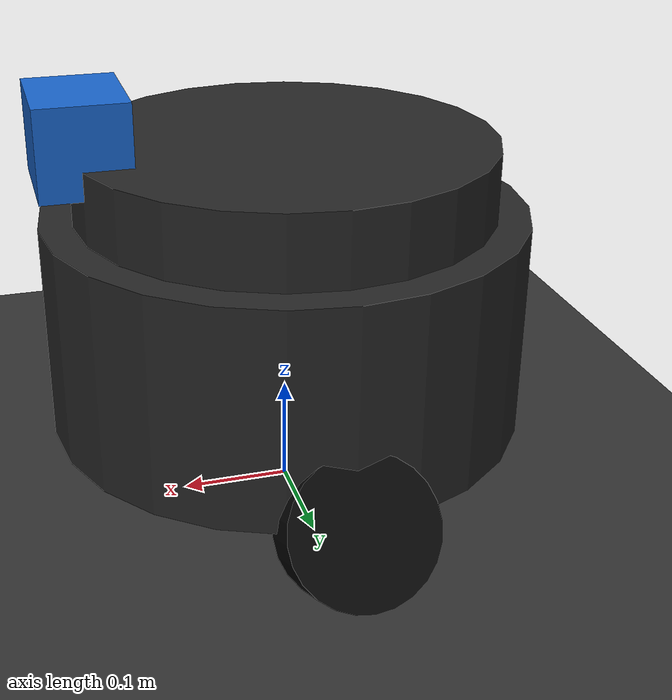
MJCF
<mujoco model="turtlebot_waffle_pi">

    <compiler angle="radian" autolimits="true"/>
    <option gravity="0 0 -9.81" timestep="0.002"/>

    <default>
        <joint damping="0.5" frictionloss="0.1"/>
        <geom friction="1 0.5 0.5" condim="3"/>
    </default>

    <asset>
        <texture name="floor_tex"
                 type="2d"
                 builtin="checker"
                 rgb1="0.15 0.15 0.15"
                 rgb2="0.25 0.25 0.25"
                 width="512"
                 height="512"/>

        <material name="floor_mat"
                  texture="floor_tex"
                  texrepeat="10 10"
                  reflectance="0"/>

        <material name="robot_mat"
                  rgba="0.15 0.15 0.15 1"/>

        <material name="wheel_mat"
                  rgba="0.03 0.03 0.03 1"/>

        <material name="sensor_mat"
                  rgba="0.1 0.4 0.8 1"/>
    </asset>

    <worldbody>

        <!-- Ground -->
        <geom name="floor"
              type="plane"
              size="10 10 0.1"
              material="floor_mat"/>

        <!-- Lighting -->
        <light name="main_light"
               pos="0 0 5"
               dir="0 0 -1"
               directional="true"/>

        <!-- TurtleBot Main Body        -->

        <body name="base"
              pos="0 0 0.18">

            <freejoint name="base_free"/>

            <!-- Main chassis -->
            <geom name="base_link"
                  type="cylinder"
                  size="0.22 0.10"
                  material="robot_mat"
                  mass="5"/>

            <!-- Top plate -->
            <geom name="top_plate"
                  type="cylinder"
                  pos="0 0 0.13"
                  size="0.19 0.035"
                  material="robot_mat"
                  mass="1"/>

            <!-- Left Wheel                 -->

            <body name="left_wheel"
                  pos="0 0.22 -0.10">

                <joint name="left_wheel_joint"
                       type="hinge"
                       axis="0 1 0"/>

                <geom name="left_wheel_geom"
                      type="cylinder"
                      size="0.065 0.025"
                      euler="90 0 0"
                      material="wheel_mat"
                      mass="0.2"/>

            </body>

            <!-- Right Wheel                -->

            <body name="right_wheel"
                  pos="0 -0.22 -0.10">

                <joint name="right_wheel_joint"
                       type="hinge"
                       axis="0 1 0"/>

                <geom name="right_wheel_geom"
                      type="cylinder"
                      size="0.065 0.025"
                      euler="90 0 0"
                      material="wheel_mat"
                      mass="0.2"/>

            </body>

            <!-- Front Caster               -->

            <body name="front_caster"
                  pos="0.16 0 -0.105">

                <geom name="caster"
                      type="sphere"
                      size="0.045"
                      material="wheel_mat"
                      mass="0.1"/>

            </body>

            <!-- Camera / Sensor            -->

            <body name="camera"
                  pos="0.18 0 0.18">

                <geom name="camera_body"
                      type="box"
                      size="0.04 0.05 0.04"
                      material="sensor_mat"
                      mass="0.05"/>

                <camera name="front_camera"
                        pos="0.06 0 0"
                        euler="0 0 0"
                        fovy="60"/>

            </body>

        </body>

    </worldbody>

    <!-- Wheel Motors               -->

    <actuator>

        <velocity name="left_motor"
                  joint="left_wheel_joint"
                  kv="20"
                  ctrlrange="-15 15"/>

        <velocity name="right_motor"
                  joint="right_wheel_joint"
                  kv="20"
                  ctrlrange="-15 15"/>

    </actuator>

</mujoco>
